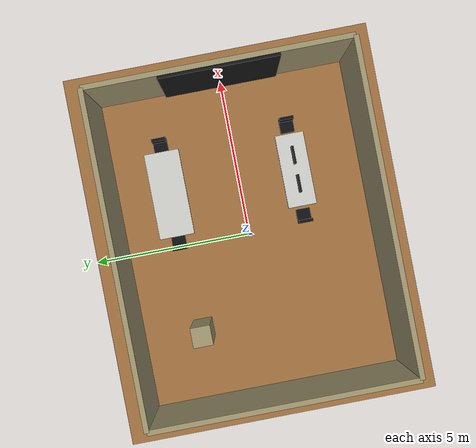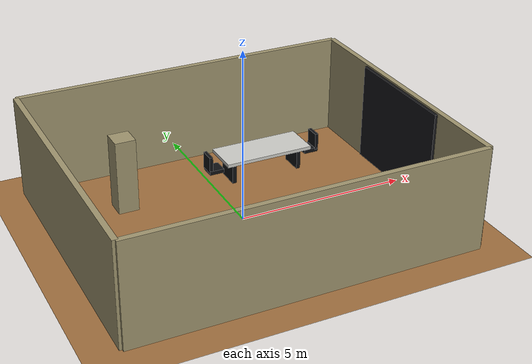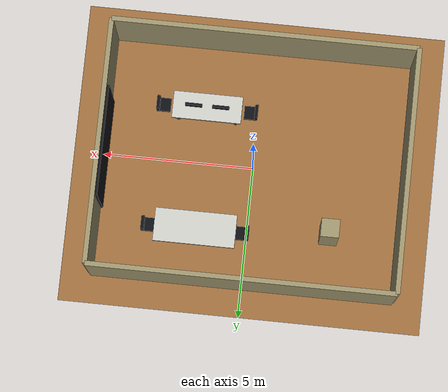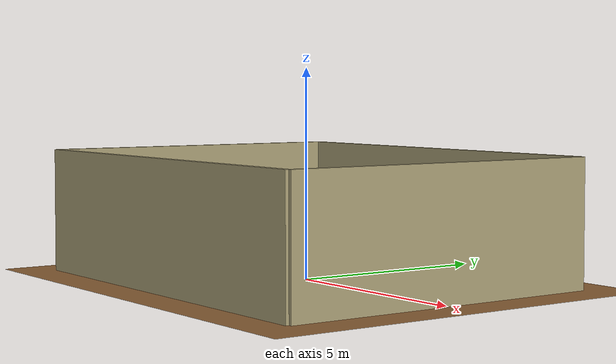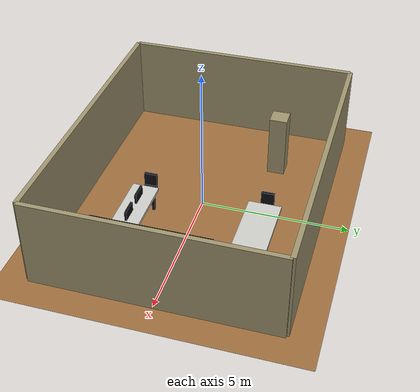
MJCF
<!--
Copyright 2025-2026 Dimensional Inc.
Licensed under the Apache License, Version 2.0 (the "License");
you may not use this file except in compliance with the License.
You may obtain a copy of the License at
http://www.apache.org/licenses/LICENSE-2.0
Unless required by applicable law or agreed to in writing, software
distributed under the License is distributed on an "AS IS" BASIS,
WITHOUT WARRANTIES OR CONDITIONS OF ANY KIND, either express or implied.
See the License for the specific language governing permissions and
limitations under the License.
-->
<!-- Lightweight primitive approximation of the Go2 office for fast navigation tests. -->
<mujoco model="alohamini2_office_lite">
  <compiler angle="radian" autolimits="true"/>
  <option timestep="0.005" gravity="0 0 -9.81" integrator="implicitfast"/>

  <visual>
    <global azimuth="135" elevation="-25"/>
    <!-- Required for wrist cameras mounted only centimeters from their grippers. -->
    <map znear="0.0002"/>
    <headlight ambient="0.4 0.4 0.4" diffuse="0.7 0.7 0.7"/>
  </visual>

  <asset>
    <material name="floor_mat" rgba="0.62 0.43 0.24 1"/>
    <material name="wall_mat" rgba="0.62 0.58 0.43 1"/>
    <material name="desk_mat" rgba="0.8 0.8 0.78 1"/>
    <material name="dark_mat" rgba="0.055 0.06 0.07 1"/>
    <material name="curtain_mat" rgba="0.08 0.08 0.09 1"/>
  </asset>

  <default>
    <geom condim="3" friction="1 0.01 0.001" solref="0.01 1"/>
  </default>

  <worldbody>
    <light directional="true" pos="0 0 4" dir="0 0 -1"/>
    <geom name="floor" type="plane" size="6 5 0.1" material="floor_mat"/>

    <!-- Room envelope. -->
    <geom name="north_wall" type="box" pos="0 4 1.5" size="5 0.08 1.5" material="wall_mat"/>
    <geom name="south_wall" type="box" pos="0 -4 1.5" size="5 0.08 1.5" material="wall_mat"/>
    <geom name="east_wall" type="box" pos="5 0 1.5" size="0.08 4 1.5" material="wall_mat"/>
    <geom name="west_wall" type="box" pos="-5 0 1.5" size="0.08 4 1.5" material="wall_mat"/>
    <geom name="curtain" type="box" pos="4.88 0 1.5" size="0.04 1.8 1.45" material="curtain_mat"/>

    <!-- Two desk islands, reduced to boxes while preserving navigation obstacles. -->
    <body name="desk_island_front" pos="1.7 -1.8 0">
      <geom name="front_desk_top" type="box" pos="0 0 0.72" size="1.15 0.45 0.05" material="desk_mat"/>
      <geom type="box" pos="-0.95 -0.32 0.35" size="0.05 0.05 0.35" material="dark_mat"/>
      <geom type="box" pos="0.95 -0.32 0.35" size="0.05 0.05 0.35" material="dark_mat"/>
      <geom type="box" pos="-0.95 0.32 0.35" size="0.05 0.05 0.35" material="dark_mat"/>
      <geom type="box" pos="0.95 0.32 0.35" size="0.05 0.05 0.35" material="dark_mat"/>
      <geom type="box" pos="-0.45 0 0.92" size="0.28 0.035 0.18" material="dark_mat"/>
      <geom type="box" pos="0.45 0 0.92" size="0.28 0.035 0.18" material="dark_mat"/>
    </body>

    <body name="meeting_table" pos="1.7 2.25 0">
      <geom name="meeting_table_top" type="box" pos="0 0 0.72" size="1.35 0.55 0.05" material="desk_mat"/>
      <geom type="box" pos="-1.05 0 0.35" size="0.06 0.35 0.35" material="dark_mat"/>
      <geom type="box" pos="1.05 0 0.35" size="0.06 0.35 0.35" material="dark_mat"/>
    </body>

    <!-- Cheap chair silhouettes around both tables. -->
    <body name="chair_left" pos="0.25 -1.8 0">
      <geom type="box" pos="0 0 0.42" size="0.22 0.22 0.06" material="dark_mat"/>
      <geom type="box" pos="-0.18 0 0.68" size="0.05 0.22 0.25" material="dark_mat"/>
    </body>
    <body name="chair_right" pos="3.15 -1.8 0">
      <geom type="box" pos="0 0 0.42" size="0.22 0.22 0.06" material="dark_mat"/>
      <geom type="box" pos="0.18 0 0.68" size="0.05 0.22 0.25" material="dark_mat"/>
    </body>
    <body name="chair_meeting_left" pos="0.15 2.25 0">
      <geom type="box" pos="0 0 0.42" size="0.22 0.22 0.06" material="dark_mat"/>
      <geom type="box" pos="-0.18 0 0.68" size="0.05 0.22 0.25" material="dark_mat"/>
    </body>
    <body name="chair_meeting_right" pos="3.25 2.25 0">
      <geom type="box" pos="0 0 0.42" size="0.22 0.22 0.06" material="dark_mat"/>
      <geom type="box" pos="0.18 0 0.68" size="0.05 0.22 0.25" material="dark_mat"/>
    </body>

    <geom name="column" type="box" pos="-2.7 2.0 1.1" size="0.3 0.3 1.1" material="wall_mat"/>
  </worldbody>
</mujoco>
